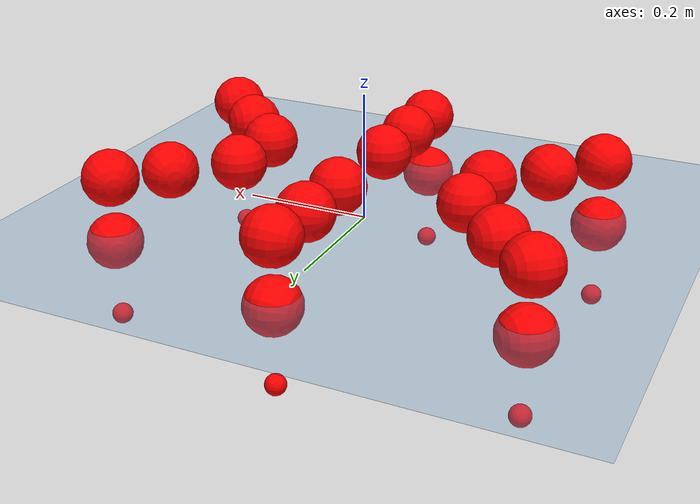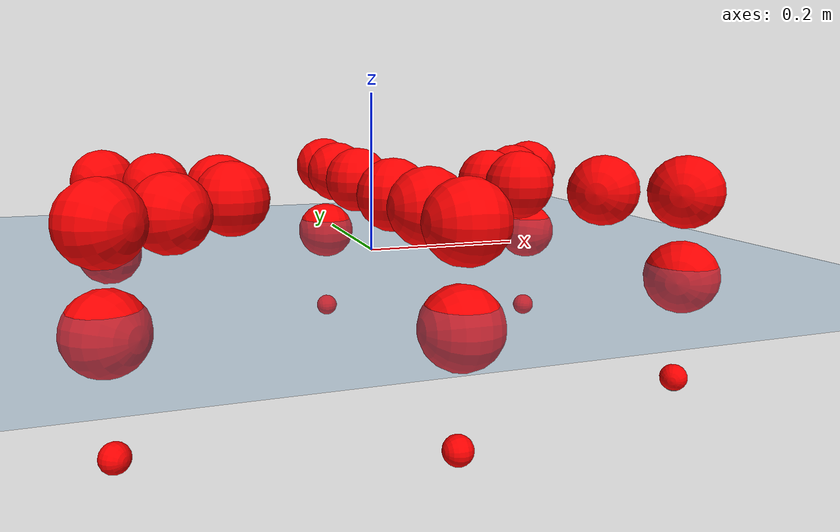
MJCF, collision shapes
<mujoco model="Golem">
  <compiler angle="radian" assetdir="assets" balanceinertia="true" inertiafromgeom="false"/>

  <option timestep="0.005" density="1.2" viscosity="2e-05"/>

  <size nkey="1"/>

  <visual>
    <quality shadowsize="8192"/>
    <map shadowclip="0.5"/>
  </visual>

  <default>
    <default class="/">
      <joint armature="0.01" damping="0.01" frictionloss="0.01"/>
      <geom contype="0" conaffinity="0" group="1" solref="-1000 -80"/>
      <site size="0.01 0.005 0.005" group="5"/>
      <general forcelimited="true" biastype="affine" gainprm="25" biasprm="0 -25 -0.5"/>
      <default class="visual">
        <geom type="mesh" group="2"/>
      </default>
      <default class="collision">
        <geom group="3"/>
      </default>
      <default class="foot">
        <geom size="0.01 0 0" condim="6" group="4" priority="1" solimp="0.015 1 0.01"/>
      </default>
      <default class="reward_collision_sphere">
        <geom group="5" rgba="1 0 0 1"/>
      </default>
    </default>
  </default>

  <asset>
    <texture type="skybox" colorspace="auto" name="//unnamed_texture_0" builtin="gradient" rgb1="0.95 0.95 0.95" rgb2="0.95 0.95 0.95" width="100" height="600"/>
    <texture type="2d" colorspace="auto" name="texplane" builtin="checker" rgb1="0.345 0.575 0.748" rgb2="0.345 0.575 0.748" markrgb="1 1 1" width="512" height="512"/>
    <material name="MatPlane" class="/" texture="texplane" texuniform="true" texrepeat="2 2" specular="0.9"/>
    <mesh name="body" class="/" file="body.stl" scale="0.001 0.001 0.001"/>
    <mesh name="coxa" class="/" file="coxa.stl" scale="0.001 0.001 0.001"/>
    <mesh name="femur" class="/" file="femur.stl" scale="0.001 0.001 0.001"/>
    <mesh name="tibia" class="/" file="tibia.stl" scale="0.001 0.001 0.001"/>
    <mesh name="tarsus" class="/" file="tarsus.stl" scale="0.001 0.001 0.001"/>
  </asset>

  <worldbody>
    <geom name="floor" class="/" size="100 100 0.125" type="plane" group="0" material="MatPlane"/>
    <light name="toplight_shadow" class="/" pos="0 0 5" dir="0.0990148 0.0990148 -0.990148" type="directional" ambient="0.04 0.04 0.04" diffuse="0.55 0.55 0.55" specular="0.12 0.12 0.12"/>
    <light name="toplight_fill" class="/" pos="0 0 5" dir="0.0990148 0.0990148 -0.990148" type="directional" castshadow="false" ambient="0.04 0.04 0.04" diffuse="0.3 0.3 0.3" specular="0.08 0.08 0.08"/>
    <body name="trunk" pos="0.00266541 0.00185774 0.00151164" quat="1 -4.33505e-05 -4.05488e-06 -4.89489e-05">
      <inertial pos="-0.000249217 -0.00119462 -0.00118823" quat="0.999997 -0.00129512 -0.00181109 0.000992698" mass="4.82284" diaginertia="0.0222502 0.00479492 0.0286299"/>
      <joint name="//unnamed_joint_0" type="free"/>
      <geom name="//unnamed_geom_1" class="/" pos="0 0 0.0789839" quat="1 0 0 0" type="mesh" rgba="0.9 0.9 0.9 1" mesh="body"/>
      <site name="imu" class="/" pos="0.167882 0.0138099 0.121109" size="0.0109519"/>
      <camera name="track" class="/" pos="0 -1.7318 0" quat="0.707107 0.707107 0 0" mode="trackcom"/>
      <camera name="ego_camera" class="/" pos="0.154122 0 0.123412" quat="-0.5 -0.5 0.5 0.5"/>
      <body name="coxa_RR" pos="-0.211072 -0.0723957 0.0784063" quat="0.382615 2.2606e-05 -8.06231e-05 -0.923908">
        <inertial pos="-0.000288744 -0.00250566 -0.000245614" quat="0.999927 0.00189859 -0.00798598 0.00885508" mass="0.250973" diaginertia="0.0224352 0.00465856 0.0273417"/>
        <joint name="coxa_joint_RR" class="/" pos="0 0 0" axis="-0.000205793 -0.00025948 -1" range="-3.1328 3.13611" armature="0.00958219" damping="0" frictionloss="0.0110362"/>
        <geom name="//unnamed_geom_2" class="/" type="mesh" rgba="0.2 0.2 0.2 1" mesh="coxa"/>
        <geom name="//unnamed_geom_3" class="reward_collision_sphere" size="0.0438077" pos="-0.0355667 0 0"/>
        <body name="femur_RR" pos="0.0675766 -0.000446868 -0.00331136" quat="0.500039 -0.499987 0.499964 0.50001">
          <inertial pos="-0.00114149 -0.000387222 -0.000512954" quat="0.999998 0.000615969 -0.0011612 -0.00128121" mass="0.263015" diaginertia="0.0234406 0.00484708 0.0295228"/>
          <joint name="femur_joint_RR" class="/" pos="0 0 0" axis="0.00355073 0.000676602 -0.999993" range="-3.19478 3.09145" armature="0.0113599" damping="0.00869962" frictionloss="0.0124446"/>
          <geom name="//unnamed_geom_4" class="/" type="mesh" rgba="0.9 0.9 0.9 1" mesh="femur"/>
          <geom name="//unnamed_geom_5" class="reward_collision_sphere" size="0.0438077"/>
          <body name="tibia_RR" pos="-0.00395676 -0.0965337 0.0028846" quat="0.00115078 0.999999 0.000364382 -8.84045e-05">
            <inertial pos="-0.00276297 0.000999283 -0.000476883" quat="0.999997 0.000592979 -0.00192688 -0.00170993" mass="0.2649" diaginertia="0.0230411 0.00478964 0.0272316"/>
            <joint name="tibia_joint_RR" class="/" pos="0 0 0" axis="-0.0102895 0.00702824 0.999922" range="-3.12288 3.17844" armature="0.0115311" damping="0" frictionloss="0.0109874"/>
            <geom name="//unnamed_geom_6" class="/" type="mesh" rgba="0.2 0.2 0.2 1" mesh="tibia"/>
            <geom name="//unnamed_geom_7" class="reward_collision_sphere" size="0.0438077"/>
            <body name="tarsus_RR" pos="0.105942 -0.000144481 0.00218844" quat="1 -0.000139145 -7.19775e-05 4.00355e-05">
              <inertial pos="0.0747004 0.000455983 0.00103613" quat="0.502702 0.500694 0.499161 0.497428" mass="0.264342" diaginertia="0.0233758 0.00495864 0.028978"/>
              <joint name="tarsus_joint_RR" class="/" pos="0 0 0" axis="0.00452818 0.00172298 0.999988" range="-3.19372 3.18194" armature="0.0113069" damping="0.0444759" frictionloss="0.0103406"/>
              <geom name="//unnamed_geom_8" class="/" type="mesh" rgba="0.9 0.9 0.9 1" mesh="tarsus"/>
              <geom name="foot_1" class="foot" size="0.0110519" pos="0.132782 0 0" quat="0 -0.707107 0 0.707107"/>
              <geom name="//unnamed_geom_10" class="reward_collision_sphere" size="0.0438077"/>
              <geom name="//unnamed_geom_11" class="reward_collision_sphere" size="0.0164279" pos="0.127447 0 0"/>
              <site name="foot_1" class="foot" pos="0.132782 0 0" quat="0 -0.707107 0 0.707107" size="0.0109519"/>
            </body>
          </body>
        </body>
      </body>
      <body name="coxa_RM" pos="-0.000681143 -0.11523 0.0798492" quat="0.707403 -2.30459e-05 0.000925259 -0.70681">
        <inertial pos="0.00261321 -5.24766e-05 -0.000557396" quat="0.99999 -0.00348166 -0.00156944 -0.00248504" mass="0.260755" diaginertia="0.0230451 0.00471896 0.0294966"/>
        <joint name="coxa_joint_RM" class="/" pos="0 0 0" axis="0.00268011 -0.000307572 -0.999996" stiffness="0.0061024" range="-3.1442 3.11954" armature="0.0109565" damping="0.000621103" frictionloss="0.00971477"/>
        <geom name="//unnamed_geom_12" class="/" type="mesh" rgba="0.2 0.2 0.2 1" mesh="coxa"/>
        <geom name="//unnamed_geom_13" class="reward_collision_sphere" size="0.0438077" pos="-0.0355667 0 0"/>
        <body name="femur_RM" pos="0.068621 0.00238971 -0.00032323" quat="0.499238 -0.500721 0.5006 0.499438">
          <inertial pos="-0.000883914 -0.000783389 0.000111491" quat="1 -5.82662e-05 -0.000163113 1.91525e-05" mass="0.269935" diaginertia="0.024199 0.00485271 0.0296036"/>
          <joint name="femur_joint_RM" class="/" pos="0 0 0" axis="0.00548618 -0.00698199 -0.999961" stiffness="0.00502707" range="-3.14871 3.14502" armature="0.0103647" damping="0.0234528" frictionloss="0.0108682"/>
          <geom name="//unnamed_geom_14" class="/" type="mesh" rgba="0.9 0.9 0.9 1" mesh="femur"/>
          <geom name="//unnamed_geom_15" class="reward_collision_sphere" size="0.0438077"/>
          <body name="tibia_RM" pos="0.00140183 -0.0926077 0.00234518" quat="0.000120102 1 8.55046e-05 4.8863e-05">
            <inertial pos="0.00235802 -0.00274005 0.000551682" quat="0.999905 0.00177477 -0.00286768 0.0133861" mass="0.253155" diaginertia="0.023227 0.00501036 0.0289484"/>
            <joint name="tibia_joint_RM" class="/" pos="0 0 0" axis="0.000129982 0.000195935 1" range="-3.19506 3.18461" armature="0.0107387" damping="0.015521" frictionloss="0.0104497"/>
            <geom name="//unnamed_geom_16" class="/" type="mesh" rgba="0.2 0.2 0.2 1" mesh="tibia"/>
            <geom name="//unnamed_geom_17" class="reward_collision_sphere" size="0.0438077"/>
            <body name="tarsus_RM" pos="0.104332 4.46793e-05 0.0025708" quat="1 -9.58645e-05 6.36205e-05 0.000114767">
              <inertial pos="0.0704551 -0.0017753 0.00278973" quat="0.505967 0.501334 0.503504 0.489026" mass="0.270591" diaginertia="0.0225494 0.00473961 0.0276058"/>
              <joint name="tarsus_joint_RM" class="/" pos="0 0 0" axis="0.00121908 0.000552024 0.999999" range="-3.0975 3.15006" armature="0.0113443" damping="0.00771282" frictionloss="0.0108066"/>
              <geom name="//unnamed_geom_18" class="/" type="mesh" rgba="0.9 0.9 0.9 1" mesh="tarsus"/>
              <geom name="foot_2" class="foot" size="0.0107366" pos="0.132782 0 0" quat="0 -0.707107 0 0.707107"/>
              <geom name="//unnamed_geom_20" class="reward_collision_sphere" size="0.0438077"/>
              <geom name="//unnamed_geom_21" class="reward_collision_sphere" size="0.0164279" pos="0.127447 0 0"/>
              <site name="foot_2" class="foot" pos="0.132782 0 0" quat="0 -0.707107 0 0.707107" size="0.0109519"/>
            </body>
          </body>
        </body>
      </body>
      <body name="coxa_RF" pos="0.209856 -0.0694939 0.0816567" quat="0.923811 -0.000169434 -0.000422668 -0.382848">
        <inertial pos="0.000509793 0.00163668 0.000537695" quat="1 -0.000446789 -0.000834897 -0.000276983" mass="0.259596" diaginertia="0.023385 0.00481594 0.0280646"/>
        <joint name="coxa_joint_RF" class="/" pos="0 0 0" axis="-0.00121163 -0.00013958 -0.999999" range="-3.13016 3.12233" armature="0.0124473" damping="0.00319694" frictionloss="0.0108877"/>
        <geom name="//unnamed_geom_22" class="/" type="mesh" rgba="0.2 0.2 0.2 1" mesh="coxa"/>
        <geom name="//unnamed_geom_23" class="reward_collision_sphere" size="0.0438077" pos="-0.0355667 0 0"/>
        <body name="femur_RF" pos="0.0713526 -0.000369614 -0.00164005" quat="0.500035 -0.499957 0.500057 0.49995">
          <inertial pos="0.000685846 -0.00228926 0.000374618" quat="0.999994 -0.00117313 -0.00288933 -0.00144713" mass="0.259859" diaginertia="0.0234159 0.00468552 0.0292183"/>
          <joint name="femur_joint_RF" class="/" pos="0 0 0" axis="-0.000380915 -0.000463534 -1" stiffness="0.00650759" range="-3.19203 3.13179" armature="0.00931183" damping="0.00809216" frictionloss="0.0123881"/>
          <geom name="//unnamed_geom_24" class="/" type="mesh" rgba="0.9 0.9 0.9 1" mesh="femur"/>
          <geom name="//unnamed_geom_25" class="reward_collision_sphere" size="0.0438077"/>
          <body name="tibia_RF" pos="-0.0028658 -0.094681 0.00182813" quat="-0.000100574 1 -0.000265123 0.000203441">
            <inertial pos="-0.00230324 -5.39232e-05 0.00103089" quat="1 0.000213677 -5.20066e-05 0.000157862" mass="0.268334" diaginertia="0.0225908 0.0049301 0.0282678"/>
            <joint name="tibia_joint_RF" class="/" pos="0 0 0" axis="0.00772256 -0.00898896 0.99993" range="-3.12446 3.08664" armature="0.010874" damping="0.00986194" frictionloss="0.0110378"/>
            <geom name="//unnamed_geom_26" class="/" type="mesh" rgba="0.2 0.2 0.2 1" mesh="tibia"/>
            <geom name="//unnamed_geom_27" class="reward_collision_sphere" size="0.0438077"/>
            <body name="tarsus_RF" pos="0.101409 0.00231791 0.00337915" quat="0.999999 -0.00103557 -0.000839757 0.000360806">
              <inertial pos="0.0708715 -0.000946829 0.000300372" quat="0.498917 0.501317 0.49946 0.500303" mass="0.264289" diaginertia="0.0230977 0.00492914 0.0292556"/>
              <joint name="tarsus_joint_RF" class="/" pos="0 0 0" axis="-0.00882714 0.00872835 0.999923" range="-3.14774 3.15439" armature="0.0119752" damping="0.01188" frictionloss="0.0102368"/>
              <geom name="//unnamed_geom_28" class="/" type="mesh" rgba="0.9 0.9 0.9 1" mesh="tarsus"/>
              <geom name="foot_3" class="foot" size="0.0118884" pos="0.132782 0 0" quat="0 -0.707107 0 0.707107"/>
              <geom name="//unnamed_geom_30" class="reward_collision_sphere" size="0.0438077"/>
              <geom name="//unnamed_geom_31" class="reward_collision_sphere" size="0.0164279" pos="0.127447 0 0"/>
              <site name="foot_3" class="foot" pos="0.132782 0 0" quat="0 -0.707107 0 0.707107" size="0.0109519"/>
            </body>
          </body>
        </body>
      </body>
      <body name="coxa_LR" pos="-0.213439 0.0739942 0.0788608" quat="0.382793 -1.40351e-05 0.000112351 0.923834">
        <inertial pos="-0.00258766 0.000925742 -0.0017765" quat="0.999917 -0.00697189 -0.00704264 -0.00829328" mass="0.263019" diaginertia="0.0242959 0.00516287 0.0294209"/>
        <joint name="coxa_joint_LR" class="/" pos="0 0 0" axis="0.0138549 -0.00864168 -0.999867" stiffness="0.00766274" range="-3.12717 3.11057" armature="0.00996479" damping="0.0068288" frictionloss="0.00948598"/>
        <geom name="//unnamed_geom_32" class="/" type="mesh" rgba="0.2 0.2 0.2 1" mesh="coxa"/>
        <geom name="//unnamed_geom_33" class="reward_collision_sphere" size="0.0438077" pos="-0.0355667 0 0"/>
        <body name="femur_LR" pos="0.0740267 -0.00261602 -0.00229362" quat="0.500021 -0.500031 0.499945 0.500003">
          <inertial pos="-0.000360536 -0.000609541 0.000178261" quat="0.999967 -0.000876571 -0.000981782 -0.00798898" mass="0.262752" diaginertia="0.0236544 0.00506669 0.0289238"/>
          <joint name="femur_joint_LR" class="/" pos="0 0 0" axis="0.0046505 0.00930342 0.999946" range="-3.14868 3.14152" armature="0.0103729" damping="0.000975601" frictionloss="0.00959289"/>
          <geom name="//unnamed_geom_34" class="/" type="mesh" rgba="0.9 0.9 0.9 1" mesh="femur"/>
          <geom name="//unnamed_geom_35" class="reward_collision_sphere" size="0.0438077"/>
          <body name="tibia_LR" pos="-0.00153232 -0.0944723 0.00210933" quat="-0.000802292 0.999999 0.00115432 -0.000254146">
            <inertial pos="4.40473e-05 0.000308957 1.70388e-05" quat="0.999986 0.0033568 0.00121601 -0.00392647" mass="0.266194" diaginertia="0.0238296 0.00497609 0.0293676"/>
            <joint name="tibia_joint_LR" class="/" pos="0 0 0" axis="-0.0044698 0.00354947 -0.999984" range="-3.16758 3.0859" armature="0.0111132" damping="0.00792201" frictionloss="0.010819"/>
            <geom name="//unnamed_geom_36" class="/" type="mesh" rgba="0.2 0.2 0.2 1" mesh="tibia"/>
            <geom name="//unnamed_geom_37" class="reward_collision_sphere" size="0.0438077"/>
            <body name="tarsus_LR" pos="0.102785 0.000446796 0.00294725" quat="0.999999 0.000764529 0.000369947 -0.00113139">
              <inertial pos="0.0745178 0.000476357 -0.00240199" quat="0.500204 0.500069 0.499917 0.49981" mass="0.254993" diaginertia="0.0233138 0.00470235 0.0286248"/>
              <joint name="tarsus_joint_LR" class="/" pos="0 0 0" axis="0.0102153 -0.0003476 -0.999948" range="-3.19461 3.08433" armature="0.0106433" damping="0" frictionloss="0.0109663"/>
              <geom name="//unnamed_geom_38" class="/" type="mesh" rgba="0.9 0.9 0.9 1" mesh="tarsus"/>
              <geom name="foot_4" class="foot" size="0.0117929" pos="0.132782 0 0" quat="0.707107 0 -0.707107 0"/>
              <geom name="//unnamed_geom_40" class="reward_collision_sphere" size="0.0438077"/>
              <geom name="//unnamed_geom_41" class="reward_collision_sphere" size="0.0164279" pos="0.127447 0 0"/>
              <site name="foot_4" class="foot" pos="0.132782 0 0" quat="0.707107 0 -0.707107 0" size="0.0109519"/>
            </body>
          </body>
        </body>
      </body>
      <body name="coxa_LM" pos="0.00233588 0.113844 0.0813516" quat="0.707617 0.000320668 9.66683e-05 0.706596">
        <inertial pos="-0.000386625 -0.000139839 -0.000394101" quat="0.999943 -0.000866163 -0.00290291 0.0102631" mass="0.262789" diaginertia="0.0229434 0.00480915 0.028572"/>
        <joint name="coxa_joint_LM" class="/" pos="0 0 0" axis="-0.00572234 -0.000271321 -0.999984" range="-3.08463 3.1366" armature="0.0114827" damping="0.0173953" frictionloss="0.0124116"/>
        <geom name="//unnamed_geom_42" class="/" type="mesh" rgba="0.2 0.2 0.2 1" mesh="coxa"/>
        <geom name="//unnamed_geom_43" class="reward_collision_sphere" size="0.0438077" pos="-0.0355667 0 0"/>
        <body name="femur_LM" pos="0.068556 0.0011264 0.00155022" quat="0.499427 -0.500643 0.500401 0.499528">
          <inertial pos="0.00107416 -0.00293498 0.00243836" quat="0.99991 -0.00802596 -0.00175936 -0.0105662" mass="0.260916" diaginertia="0.023642 0.00469055 0.0284834"/>
          <joint name="femur_joint_LM" class="/" pos="0 0 0" axis="-0.00941419 0.00893065 0.999916" range="-3.13891 3.08558" armature="0.0118424" damping="0.00107655" frictionloss="0.0108059"/>
          <geom name="//unnamed_geom_44" class="/" type="mesh" rgba="0.9 0.9 0.9 1" mesh="femur"/>
          <geom name="//unnamed_geom_45" class="reward_collision_sphere" size="0.0438077"/>
          <body name="tibia_LM" pos="-0.00147475 -0.0910017 -0.00235342" quat="0.00100766 0.999999 -0.000584688 -0.000528179">
            <inertial pos="-0.000851803 -0.00324512 -0.000167582" quat="0.999939 0.00445901 -0.000273329 -0.0100807" mass="0.262285" diaginertia="0.0233933 0.00503652 0.0285865"/>
            <joint name="tibia_joint_LM" class="/" pos="0 0 0" axis="-0.00272863 -0.00346095 -0.99999" range="-3.13642 3.13188" armature="0.0123278" damping="0.000949223" frictionloss="0.0101376"/>
            <geom name="//unnamed_geom_46" class="/" type="mesh" rgba="0.2 0.2 0.2 1" mesh="tibia"/>
            <geom name="//unnamed_geom_47" class="reward_collision_sphere" size="0.0438077"/>
            <body name="tarsus_LM" pos="0.106124 0.000350723 0.00168888" quat="0.999999 -0.000821299 -0.000166694 0.000784189">
              <inertial pos="0.0688494 -0.000403262 -0.00139259" quat="0.500386 0.499974 0.499757 0.499883" mass="0.26197" diaginertia="0.0225858 0.00477632 0.028624"/>
              <joint name="tarsus_joint_LM" class="/" pos="0 0 0" axis="-6.74434e-05 -0.00221633 -0.999998" range="-3.09008 3.12237" armature="0.0124825" damping="0.00244239" frictionloss="0.0112072"/>
              <geom name="//unnamed_geom_48" class="/" type="mesh" rgba="0.9 0.9 0.9 1" mesh="tarsus"/>
              <geom name="foot_5" class="foot" size="0.0112073" pos="0.132782 0 0" quat="0.707107 0 -0.707107 0"/>
              <geom name="//unnamed_geom_50" class="reward_collision_sphere" size="0.0438077"/>
              <geom name="//unnamed_geom_51" class="reward_collision_sphere" size="0.0164279" pos="0.127447 0 0"/>
              <site name="foot_5" class="foot" pos="0.132782 0 0" quat="0.707107 0 -0.707107 0" size="0.0109519"/>
            </body>
          </body>
        </body>
      </body>
      <body name="coxa_LF" pos="0.213533 0.0751845 0.0765008" quat="0.923799 0.000118934 0.000275022 0.382877">
        <inertial pos="-6.94847e-06 -6.09808e-05 -0.000252958" quat="0.999931 0.00931784 0.00566803 -0.00437547" mass="0.248571" diaginertia="0.0226614 0.00472357 0.028033"/>
        <joint name="coxa_joint_LF" class="/" pos="0 0 0" axis="0.00108626 0.0036415 -0.999993" stiffness="0.00703251" range="-3.15722 3.18739" armature="0.012341" damping="0.00629303" frictionloss="0.00971143"/>
        <geom name="//unnamed_geom_52" class="/" type="mesh" rgba="0.2 0.2 0.2 1" mesh="coxa"/>
        <geom name="//unnamed_geom_53" class="reward_collision_sphere" size="0.0438077" pos="-0.0355667 0 0"/>
        <body name="femur_LF" pos="0.0714232 -0.00234301 0.00138273" quat="0.500957 -0.499751 0.499165 0.500125">
          <inertial pos="0.00249099 -0.000380951 -1.12339e-05" quat="0.999994 -0.00101341 -0.000219468 0.00327076" mass="0.268031" diaginertia="0.0235968 0.00487269 0.0280584"/>
          <joint name="femur_joint_LF" class="/" pos="0 0 0" axis="2.34799e-05 0.000193244 1" range="-3.09886 3.11793" armature="0.0124794" damping="0.0189035" frictionloss="0.0113839"/>
          <geom name="//unnamed_geom_54" class="/" type="mesh" rgba="0.9 0.9 0.9 1" mesh="femur"/>
          <geom name="//unnamed_geom_55" class="reward_collision_sphere" size="0.0438077"/>
          <body name="tibia_LF" pos="-0.00110025 -0.0915581 0.00279137" quat="-9.37927e-05 1 -9.53067e-05 3.43168e-05">
            <inertial pos="-0.000155541 0.00269811 0.000757201" quat="0.999996 0.00203075 -0.000642239 0.00181022" mass="0.258834" diaginertia="0.0235179 0.00483803 0.0284845"/>
            <joint name="tibia_joint_LF" class="/" pos="0 0 0" axis="-0.00551597 -0.0003871 -0.999985" range="-3.14252 3.13294" armature="0.00975217" damping="0" frictionloss="0.0116675"/>
            <geom name="//unnamed_geom_56" class="/" type="mesh" rgba="0.2 0.2 0.2 1" mesh="tibia"/>
            <geom name="//unnamed_geom_57" class="reward_collision_sphere" size="0.0438077"/>
            <body name="tarsus_LF" pos="0.105087 0.00160345 0.000831898" quat="0.999999 0.000855959 -0.000698756 -0.000779276">
              <inertial pos="0.072344 0.000137408 -0.001125" quat="0.500018 0.490249 0.502401 0.50718" mass="0.265793" diaginertia="0.023184 0.00499457 0.0288686"/>
              <joint name="tarsus_joint_LF" class="/" pos="0 0 0" axis="0.00109281 -0.00575532 -0.999983" stiffness="0.0233967" range="-3.19086 3.16005" armature="0.010751" damping="0.0259868" frictionloss="0.0110748"/>
              <geom name="//unnamed_geom_58" class="/" type="mesh" rgba="0.9 0.9 0.9 1" mesh="tarsus"/>
              <geom name="foot_6" class="foot" size="0.0106435" pos="0.132782 0 0" quat="0.707107 0 -0.707107 0"/>
              <geom name="//unnamed_geom_60" class="reward_collision_sphere" size="0.0438077"/>
              <geom name="//unnamed_geom_61" class="reward_collision_sphere" size="0.0164279" pos="0.127447 0 0"/>
              <site name="foot_6" class="foot" pos="0.132782 0 0" quat="0.707107 0 -0.707107 0" size="0.0109519"/>
            </body>
          </body>
        </body>
      </body>
    </body>
  </worldbody>

  <contact>
    <pair class="/" geom1="floor" geom2="foot_1" name="//unnamed_contact_0"/>
    <pair class="/" geom1="floor" geom2="foot_2" name="//unnamed_contact_1"/>
    <pair class="/" geom1="floor" geom2="foot_3" name="//unnamed_contact_2"/>
    <pair class="/" geom1="floor" geom2="foot_4" name="//unnamed_contact_3"/>
    <pair class="/" geom1="floor" geom2="foot_5" name="//unnamed_contact_4"/>
    <pair class="/" geom1="floor" geom2="foot_6" name="//unnamed_contact_5"/>
  </contact>

  <actuator>
    <general name="coxa_joint_RR" class="/" joint="coxa_joint_RR" forcerange="-7.79281 7.79281" gainprm="25.9994" biasprm="0 -25.9994 -0.59563"/>
    <general name="femur_joint_RR" class="/" joint="femur_joint_RR" forcerange="-7.96821 7.96821" gainprm="25.9994" biasprm="0 -25.9994 -0.59563"/>
    <general name="tibia_joint_RR" class="/" joint="tibia_joint_RR" forcerange="-7.99926 7.99926" gainprm="25.9994" biasprm="0 -25.9994 -0.59563"/>
    <general name="tarsus_joint_RR" class="/" joint="tarsus_joint_RR" forcerange="-8.77028 8.77028" gainprm="25.9994" biasprm="0 -25.9994 -0.59563"/>
    <general name="coxa_joint_RM" class="/" joint="coxa_joint_RM" forcerange="-7.21895 7.21895" gainprm="25.9994" biasprm="0 -25.9994 -0.59563"/>
    <general name="femur_joint_RM" class="/" joint="femur_joint_RM" forcerange="-8.30802 8.30802" gainprm="25.9994" biasprm="0 -25.9994 -0.59563"/>
    <general name="tibia_joint_RM" class="/" joint="tibia_joint_RM" forcerange="-7.39611 7.39611" gainprm="25.9994" biasprm="0 -25.9994 -0.59563"/>
    <general name="tarsus_joint_RM" class="/" joint="tarsus_joint_RM" forcerange="-7.83094 7.83094" gainprm="25.9994" biasprm="0 -25.9994 -0.59563"/>
    <general name="coxa_joint_RF" class="/" joint="coxa_joint_RF" forcerange="-7.18184 7.18184" gainprm="25.9994" biasprm="0 -25.9994 -0.59563"/>
    <general name="femur_joint_RF" class="/" joint="femur_joint_RF" forcerange="-7.51614 7.51614" gainprm="25.9994" biasprm="0 -25.9994 -0.59563"/>
    <general name="tibia_joint_RF" class="/" joint="tibia_joint_RF" forcerange="-7.25599 7.25599" gainprm="25.9994" biasprm="0 -25.9994 -0.59563"/>
    <general name="tarsus_joint_RF" class="/" joint="tarsus_joint_RF" forcerange="-8.41106 8.41106" gainprm="25.9994" biasprm="0 -25.9994 -0.59563"/>
    <general name="coxa_joint_LR" class="/" joint="coxa_joint_LR" forcerange="-7.96797 7.96797" gainprm="25.9994" biasprm="0 -25.9994 -0.59563"/>
    <general name="femur_joint_LR" class="/" joint="femur_joint_LR" forcerange="-8.08559 8.08559" gainprm="25.9994" biasprm="0 -25.9994 -0.59563"/>
    <general name="tibia_joint_LR" class="/" joint="tibia_joint_LR" forcerange="-7.9061 7.9061" gainprm="25.9994" biasprm="0 -25.9994 -0.59563"/>
    <general name="tarsus_joint_LR" class="/" joint="tarsus_joint_LR" forcerange="-8.01506 8.01506" gainprm="25.9994" biasprm="0 -25.9994 -0.59563"/>
    <general name="coxa_joint_LM" class="/" joint="coxa_joint_LM" forcerange="-8.81047 8.81047" gainprm="25.9994" biasprm="0 -25.9994 -0.59563"/>
    <general name="femur_joint_LM" class="/" joint="femur_joint_LM" forcerange="-7.95834 7.95834" gainprm="25.9994" biasprm="0 -25.9994 -0.59563"/>
    <general name="tibia_joint_LM" class="/" joint="tibia_joint_LM" forcerange="-8.12816 8.12816" gainprm="25.9994" biasprm="0 -25.9994 -0.59563"/>
    <general name="tarsus_joint_LM" class="/" joint="tarsus_joint_LM" forcerange="-8.06974 8.06974" gainprm="25.9994" biasprm="0 -25.9994 -0.59563"/>
    <general name="coxa_joint_LF" class="/" joint="coxa_joint_LF" forcerange="-7.28003 7.28003" gainprm="25.9994" biasprm="0 -25.9994 -0.59563"/>
    <general name="femur_joint_LF" class="/" joint="femur_joint_LF" forcerange="-8.15907 8.15907" gainprm="25.9994" biasprm="0 -25.9994 -0.59563"/>
    <general name="tibia_joint_LF" class="/" joint="tibia_joint_LF" forcerange="-7.70743 7.70743" gainprm="25.9994" biasprm="0 -25.9994 -0.59563"/>
    <general name="tarsus_joint_LF" class="/" joint="tarsus_joint_LF" forcerange="-7.50337 7.50337" gainprm="25.9994" biasprm="0 -25.9994 -0.59563"/>
  </actuator>

  <sensor>
    <gyro site="imu" name="imu_angular_velocity"/>
    <velocimeter site="imu" name="imu_linear_velocity"/>
    <framelinvel objtype="site" objname="foot_1" name="foot_1_global_linear_velocity"/>
    <framelinvel objtype="site" objname="foot_2" name="foot_2_global_linear_velocity"/>
    <framelinvel objtype="site" objname="foot_3" name="foot_3_global_linear_velocity"/>
    <framelinvel objtype="site" objname="foot_4" name="foot_4_global_linear_velocity"/>
    <framelinvel objtype="site" objname="foot_5" name="foot_5_global_linear_velocity"/>
    <framelinvel objtype="site" objname="foot_6" name="foot_6_global_linear_velocity"/>
  </sensor>

  <keyframe>
    <key name="home" qpos="0 0 0.1457 1 0 0 0 0 0 0 0 0 0 0 0 0 0 0 0 0 0 0 0 0 0 0 0 0 0 0 0"/>
  </keyframe>
</mujoco>
